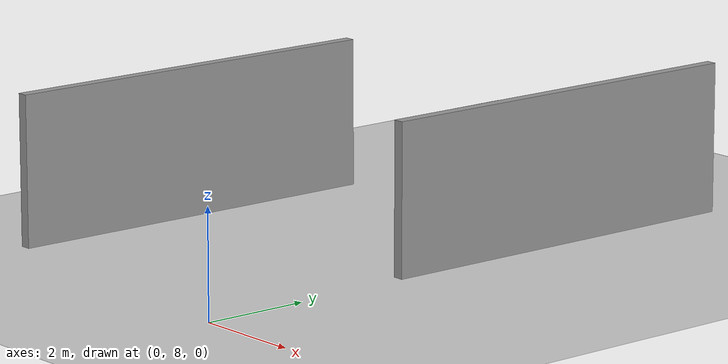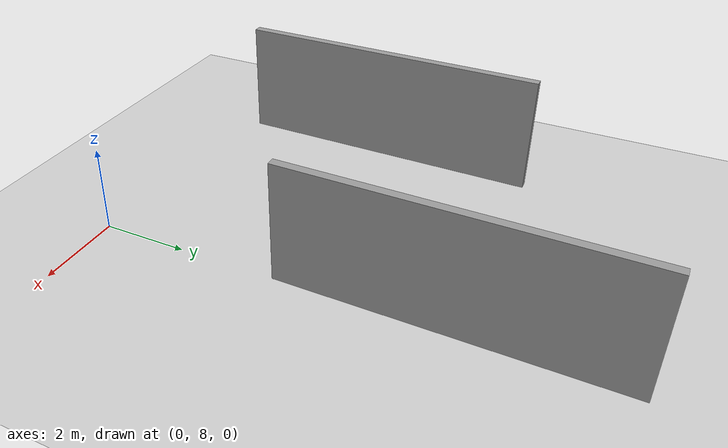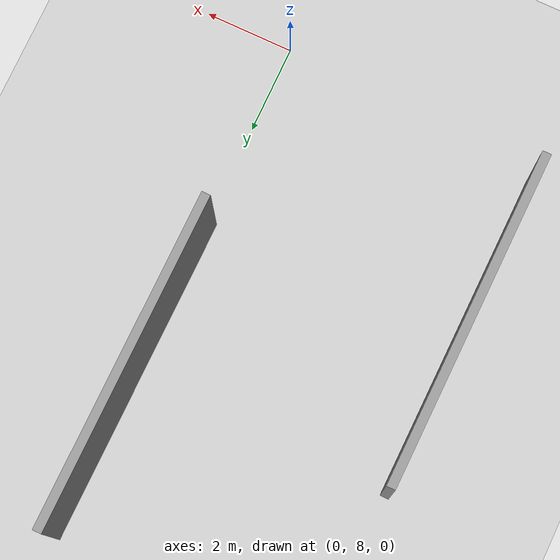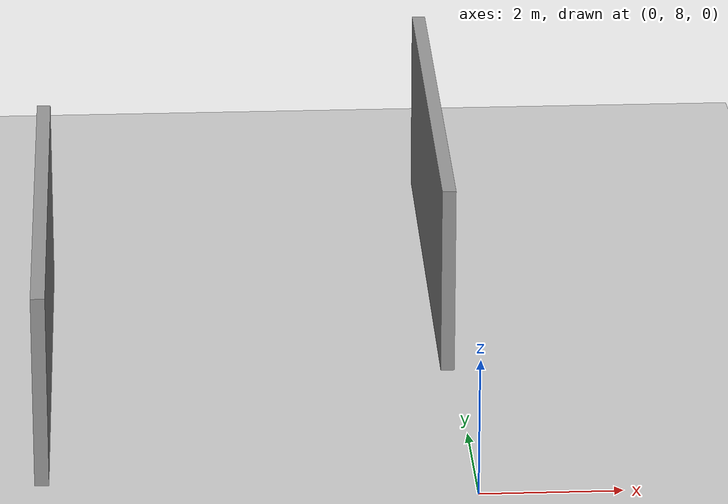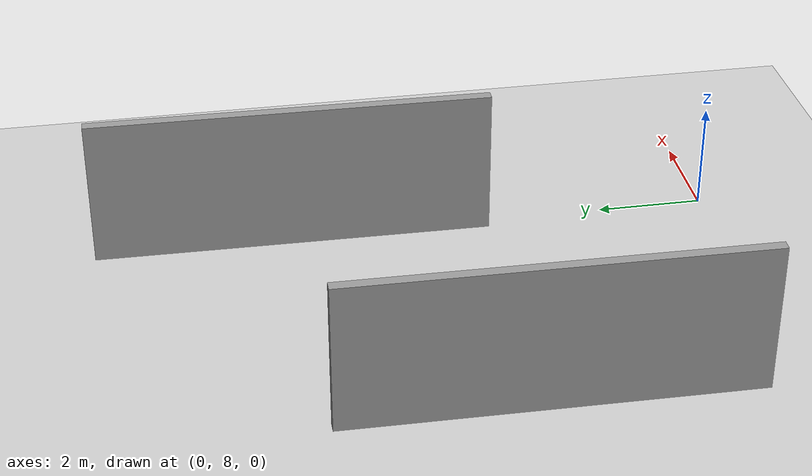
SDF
<sdf version="1.7">
 <world name="default">
  <model name="ground_plane">
   <static>1</static>
   <link name="link">
    <collision name="collision">
     <geometry><plane><normal>0 0 1</normal><size>100 100</size></plane></geometry>
     <surface><friction><ode><mu>100</mu><mu2>50</mu2></ode></friction></surface>
    </collision>
    <visual name="visual">
     <cast_shadows>0</cast_shadows>
     <geometry><plane><normal>0 0 1</normal><size>100 100</size></plane></geometry>
     <material>
      <script><uri>file://media/materials/scripts/gazebo.material</uri><name>Gazebo/Grey</name></script>
     </material>
    </visual>
   </link>
  </model>
  <model name="grey_wall_2_clone_4_clone_clone_4">
   <static>1</static>
   <link name="link">
    <pose>0 0 1.4 0 -0 0</pose>
    <collision name="collision"><geometry><box><size>7.5 0.2 2.8</size></box></geometry></collision>
    <visual name="visual">
     <cast_shadows>0</cast_shadows>
     <geometry><box><size>7.5 0.2 2.8</size></box></geometry>
     <material>
      <script>
       <uri>model://grey_wall/materials/scripts</uri>
       <uri>model://grey_wall/materials/textures</uri>
       <name>vrc/grey_wall</name>
      </script>
     </material>
    </visual>
   </link>
   <pose>-5.97283 12.3242 0 0 -0 1.5595</pose>
  </model>
  <model name="grey_wall_2_clone_4_clone_2_clone_0">
   <static>1</static>
   <link name="link">
    <pose>0 0 1.4 0 -0 0</pose>
    <collision name="collision"><geometry><box><size>7.5 0.2 2.8</size></box></geometry></collision>
    <visual name="visual">
     <cast_shadows>0</cast_shadows>
     <geometry><box><size>7.5 0.2 2.8</size></box></geometry>
     <material>
      <script>
       <uri>model://grey_wall/materials/scripts</uri>
       <uri>model://grey_wall/materials/textures</uri>
       <name>vrc/grey_wall</name>
      </script>
     </material>
    </visual>
   </link>
   <pose>-0.068346 15.9995 0 0 -0 1.5595</pose>
  </model>
 </world>
</sdf>
